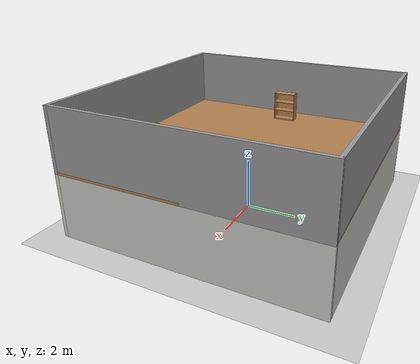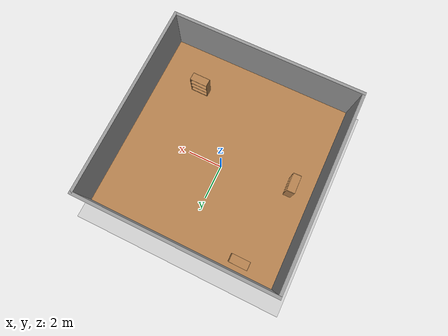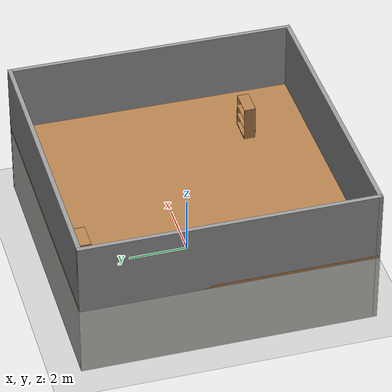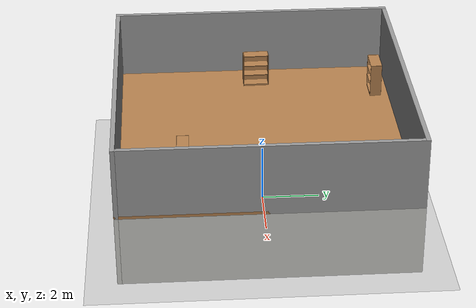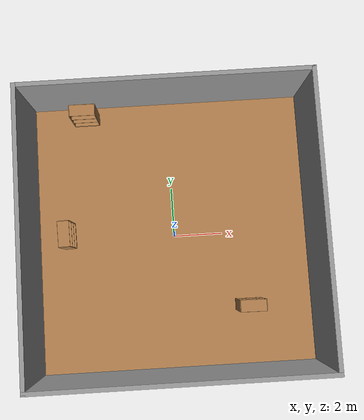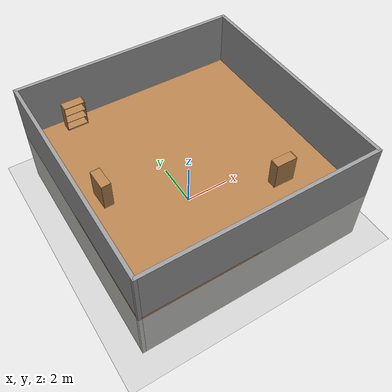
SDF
<sdf version="1.7">
 <world name="default">
  <light name="sun" type="directional">
   <pose>0 0 10 0 -0 0</pose>
   <diffuse>0.8 0.8 0.8 1</diffuse>
   <specular>0.1 0.1 0.1 1</specular>
   <attenuation>
    <range>1000</range>
    <constant>0.9</constant>
    <linear>0.01</linear>
    <quadratic>0.001</quadratic>
   </attenuation>
   <direction>-0.5 0.5 -1</direction>
   <spot><inner_angle>0</inner_angle><outer_angle>0</outer_angle><falloff>0</falloff></spot>
  </light>
  <model name="ground_plane">
   <static>1</static>
   <link name="link">
    <collision name="collision">
     <geometry><plane><normal>0 0 1</normal><size>100 100</size></plane></geometry>
     <surface><friction><ode><mu>100</mu><mu2>50</mu2></ode></friction></surface>
    </collision>
    <visual name="visual">
     <cast_shadows>0</cast_shadows>
     <geometry><plane><normal>0 0 1</normal><size>100 100</size></plane></geometry>
     <material>
      <script><uri>file://media/materials/scripts/gazebo.material</uri><name>Gazebo/Grey</name></script>
     </material>
    </visual>
   </link>
  </model>
  <gravity>0 0 -9.8</gravity>
  <magnetic_field>6e-06 2.3e-05 -4.2e-05</magnetic_field>
  <atmosphere type="adiabatic"/>
  <physics name="default_physics" default="0" type="ode">
   <max_step_size>0.001</max_step_size>
   <real_time_factor>1</real_time_factor>
   <real_time_update_rate>1000</real_time_update_rate>
  </physics>
  <scene><ambient>0.4 0.4 0.4 1</ambient><background>0.7 0.7 0.7 1</background><shadows>1</shadows></scene>
  <spherical_coordinates>
   <surface_model>EARTH_WGS84</surface_model>
   <latitude_deg>0</latitude_deg>
   <longitude_deg>0</longitude_deg>
   <elevation>0</elevation>
   <heading_deg>0</heading_deg>
  </spherical_coordinates>
  <model name="PracticeWorld">
   <pose>-0.067083 -0.068655 0 0 -0 0</pose>
   <link name="Floor_0">
    <collision name="Floor_0_Collision">
     <geometry><box><size>10 10 0.1</size></box></geometry>
     <pose>0 0 0.05 0 -0 0</pose>
    </collision>
    <visual name="Floor_0_Visual">
     <pose>0 0 0.05 0 -0 0</pose>
     <geometry><box><size>10 10 0.1</size></box></geometry>
     <material>
      <script><uri>file://media/materials/scripts/gazebo.material</uri><name>Gazebo/Wood</name></script>
      <ambient>1 1 1 1</ambient>
     </material>
    </visual>
    <pose>0 0 2.5 0 -0 0</pose>
   </link>
   <link name="Wall_10">
    <collision name="Wall_10_Collision">
     <geometry><box><size>10 0.15 2.5</size></box></geometry>
     <pose>0 0 1.25 0 -0 0</pose>
    </collision>
    <visual name="Wall_10_Visual">
     <pose>0 0 1.25 0 -0 0</pose>
     <geometry><box><size>10 0.15 2.5</size></box></geometry>
     <material>
      <script><uri>file://media/materials/scripts/gazebo.material</uri><name>Gazebo/Grey</name></script>
      <ambient>1 1 1 1</ambient>
     </material>
    </visual>
    <pose>-4.925 0 2.5 0 -0 1.5708</pose>
   </link>
   <link name="Wall_11">
    <collision name="Wall_11_Collision">
     <geometry><box><size>10 0.15 2.5</size></box></geometry>
     <pose>0 0 1.25 0 -0 0</pose>
    </collision>
    <visual name="Wall_11_Visual">
     <pose>0 0 1.25 0 -0 0</pose>
     <geometry><box><size>10 0.15 2.5</size></box></geometry>
     <material>
      <script><uri>file://media/materials/scripts/gazebo.material</uri><name>Gazebo/Grey</name></script>
      <ambient>1 1 1 1</ambient>
     </material>
    </visual>
    <pose>0 4.925 2.5 0 -0 0</pose>
   </link>
   <link name="Wall_12">
    <collision name="Wall_12_Collision">
     <geometry><box><size>10 0.15 2.5</size></box></geometry>
     <pose>0 0 1.25 0 -0 0</pose>
    </collision>
    <visual name="Wall_12_Visual">
     <pose>0 0 1.25 0 -0 0</pose>
     <geometry><box><size>10 0.15 2.5</size></box></geometry>
     <material>
      <script><uri>file://media/materials/scripts/gazebo.material</uri><name>Gazebo/Grey</name></script>
      <ambient>1 1 1 1</ambient>
     </material>
    </visual>
    <pose>4.925 0 2.5 0 0 -1.5708</pose>
   </link>
   <link name="Wall_13">
    <collision name="Wall_13_Collision">
     <geometry><box><size>10 0.15 2.5</size></box></geometry>
     <pose>0 0 1.25 0 -0 0</pose>
    </collision>
    <visual name="Wall_13_Visual">
     <pose>0 0 1.25 0 -0 0</pose>
     <geometry><box><size>10 0.15 2.5</size></box></geometry>
     <material>
      <script><uri>file://media/materials/scripts/gazebo.material</uri><name>Gazebo/Grey</name></script>
      <ambient>1 1 1 1</ambient>
     </material>
    </visual>
    <pose>0 -4.925 2.5 0 -0 3.14159</pose>
   </link>
   <link name="Wall_5">
    <collision name="Wall_5_Collision">
     <geometry><box><size>10 0.15 2.5</size></box></geometry>
     <pose>0 0 1.25 0 -0 0</pose>
    </collision>
    <visual name="Wall_5_Visual">
     <pose>0 0 1.25 0 -0 0</pose>
     <geometry><box><size>10 0.15 2.5</size></box></geometry>
     <material>
      <script><uri>file://media/materials/scripts/gazebo.material</uri><name>Gazebo/CeilingTiled</name></script>
      <ambient>0.996078 0.47451 0.0196078 1</ambient>
     </material>
    </visual>
    <pose>-4.925 0 0 0 -0 1.5708</pose>
   </link>
   <link name="Wall_6">
    <collision name="Wall_6_Collision">
     <geometry><box><size>10 0.15 2.5</size></box></geometry>
     <pose>0 0 1.25 0 -0 0</pose>
    </collision>
    <visual name="Wall_6_Visual">
     <pose>0 0 1.25 0 -0 0</pose>
     <geometry><box><size>10 0.15 2.5</size></box></geometry>
     <material>
      <script><uri>file://media/materials/scripts/gazebo.material</uri><name>Gazebo/CeilingTiled</name></script>
      <ambient>0.996078 0.47451 0.0196078 1</ambient>
     </material>
    </visual>
    <pose>0 4.925 0 0 -0 0</pose>
   </link>
   <link name="Wall_7">
    <collision name="Wall_7_Collision">
     <geometry><box><size>10 0.15 2.5</size></box></geometry>
     <pose>0 0 1.25 0 -0 0</pose>
    </collision>
    <visual name="Wall_7_Visual">
     <pose>0 0 1.25 0 -0 0</pose>
     <geometry><box><size>10 0.15 2.5</size></box></geometry>
     <material>
      <script><uri>file://media/materials/scripts/gazebo.material</uri><name>Gazebo/CeilingTiled</name></script>
      <ambient>0.996078 0.47451 0.0196078 1</ambient>
     </material>
    </visual>
    <pose>4.925 0 0 0 0 -1.5708</pose>
   </link>
   <link name="Wall_8">
    <collision name="Wall_8_Collision">
     <geometry><box><size>10 0.15 2.5</size></box></geometry>
     <pose>0 0 1.25 0 -0 0</pose>
    </collision>
    <visual name="Wall_8_Visual">
     <pose>0 0 1.25 0 -0 0</pose>
     <geometry><box><size>10 0.15 2.5</size></box></geometry>
     <material>
      <script><uri>file://media/materials/scripts/gazebo.material</uri><name>Gazebo/CeilingTiled</name></script>
      <ambient>0.996078 0.47451 0.0196078 1</ambient>
     </material>
    </visual>
    <pose>0 -4.925 0 0 -0 3.14159</pose>
   </link>
   <static>1</static>
  </model>
  <model name="bookshelf">
   <static>1</static>
   <link name="link">
    <inertial><mass>1</mass></inertial>
    <collision name="back">
     <pose>0 0.005 0.6 0 -0 0</pose>
     <geometry><box><size>0.9 0.01 1.2</size></box></geometry>
    </collision>
    <visual name="visual1">
     <pose>0 0.005 0.6 0 -0 0</pose>
     <geometry><box><size>0.9 0.01 1.2</size></box></geometry>
     <material>
      <script><uri>file://media/materials/scripts/gazebo.material</uri><name>Gazebo/Wood</name></script>
     </material>
    </visual>
    <collision name="left_side">
     <pose>0.45 -0.195 0.6 0 -0 0</pose>
     <geometry><box><size>0.02 0.4 1.2</size></box></geometry>
    </collision>
    <visual name="visual2">
     <pose>0.45 -0.195 0.6 0 -0 0</pose>
     <geometry><box><size>0.02 0.4 1.2</size></box></geometry>
     <material>
      <script><uri>file://media/materials/scripts/gazebo.material</uri><name>Gazebo/Wood</name></script>
     </material>
    </visual>
    <collision name="right_side">
     <pose>-0.45 -0.195 0.6 0 -0 0</pose>
     <geometry><box><size>0.02 0.4 1.2</size></box></geometry>
    </collision>
    <visual name="visual3">
     <pose>-0.45 -0.195 0.6 0 -0 0</pose>
     <geometry><box><size>0.02 0.4 1.2</size></box></geometry>
     <material>
      <script><uri>file://media/materials/scripts/gazebo.material</uri><name>Gazebo/Wood</name></script>
     </material>
    </visual>
    <collision name="bottom">
     <pose>0 -0.195 0.03 0 -0 0</pose>
     <geometry><box><size>0.88 0.4 0.06</size></box></geometry>
    </collision>
    <visual name="visual4">
     <pose>0 -0.195 0.03 0 -0 0</pose>
     <geometry><box><size>0.88 0.4 0.06</size></box></geometry>
     <material>
      <script><uri>file://media/materials/scripts/gazebo.material</uri><name>Gazebo/Wood</name></script>
     </material>
    </visual>
    <collision name="top">
     <pose>0 -0.195 1.19 0 -0 0</pose>
     <geometry><box><size>0.88 0.4 0.02</size></box></geometry>
    </collision>
    <visual name="visual5">
     <pose>0 -0.195 1.19 0 -0 0</pose>
     <geometry><box><size>0.88 0.4 0.02</size></box></geometry>
     <material>
      <script><uri>file://media/materials/scripts/gazebo.material</uri><name>Gazebo/Wood</name></script>
     </material>
    </visual>
    <collision name="low_shelf">
     <pose>0 -0.195 0.43 0 -0 0</pose>
     <geometry><box><size>0.88 0.4 0.02</size></box></geometry>
    </collision>
    <visual name="visual6">
     <pose>0 -0.195 0.43 0 -0 0</pose>
     <geometry><box><size>0.88 0.4 0.02</size></box></geometry>
     <material>
      <script><uri>file://media/materials/scripts/gazebo.material</uri><name>Gazebo/Wood</name></script>
     </material>
    </visual>
    <collision name="high_shelf">
     <pose>0 -0.195 0.8 0 -0 0</pose>
     <geometry><box><size>0.88 0.4 0.02</size></box></geometry>
    </collision>
    <visual name="visual7">
     <pose>0 -0.195 0.8 0 -0 0</pose>
     <geometry><box><size>0.88 0.4 0.02</size></box></geometry>
     <material>
      <script><uri>file://media/materials/scripts/gazebo.material</uri><name>Gazebo/Wood</name></script>
     </material>
    </visual>
   </link>
   <pose>2.5 -3 2.62929 0 -0 3.13</pose>
  </model>
  <model name="bookshelf_0">
   <static>1</static>
   <link name="link">
    <inertial><mass>1</mass></inertial>
    <collision name="back">
     <pose>0 0.005 0.6 0 -0 0</pose>
     <geometry><box><size>0.9 0.01 1.2</size></box></geometry>
    </collision>
    <visual name="visual1">
     <pose>0 0.005 0.6 0 -0 0</pose>
     <geometry><box><size>0.9 0.01 1.2</size></box></geometry>
     <material>
      <script><uri>file://media/materials/scripts/gazebo.material</uri><name>Gazebo/Wood</name></script>
     </material>
    </visual>
    <collision name="left_side">
     <pose>0.45 -0.195 0.6 0 -0 0</pose>
     <geometry><box><size>0.02 0.4 1.2</size></box></geometry>
    </collision>
    <visual name="visual2">
     <pose>0.45 -0.195 0.6 0 -0 0</pose>
     <geometry><box><size>0.02 0.4 1.2</size></box></geometry>
     <material>
      <script><uri>file://media/materials/scripts/gazebo.material</uri><name>Gazebo/Wood</name></script>
     </material>
    </visual>
    <collision name="right_side">
     <pose>-0.45 -0.195 0.6 0 -0 0</pose>
     <geometry><box><size>0.02 0.4 1.2</size></box></geometry>
    </collision>
    <visual name="visual3">
     <pose>-0.45 -0.195 0.6 0 -0 0</pose>
     <geometry><box><size>0.02 0.4 1.2</size></box></geometry>
     <material>
      <script><uri>file://media/materials/scripts/gazebo.material</uri><name>Gazebo/Wood</name></script>
     </material>
    </visual>
    <collision name="bottom">
     <pose>0 -0.195 0.03 0 -0 0</pose>
     <geometry><box><size>0.88 0.4 0.06</size></box></geometry>
    </collision>
    <visual name="visual4">
     <pose>0 -0.195 0.03 0 -0 0</pose>
     <geometry><box><size>0.88 0.4 0.06</size></box></geometry>
     <material>
      <script><uri>file://media/materials/scripts/gazebo.material</uri><name>Gazebo/Wood</name></script>
     </material>
    </visual>
    <collision name="top">
     <pose>0 -0.195 1.19 0 -0 0</pose>
     <geometry><box><size>0.88 0.4 0.02</size></box></geometry>
    </collision>
    <visual name="visual5">
     <pose>0 -0.195 1.19 0 -0 0</pose>
     <geometry><box><size>0.88 0.4 0.02</size></box></geometry>
     <material>
      <script><uri>file://media/materials/scripts/gazebo.material</uri><name>Gazebo/Wood</name></script>
     </material>
    </visual>
    <collision name="low_shelf">
     <pose>0 -0.195 0.43 0 -0 0</pose>
     <geometry><box><size>0.88 0.4 0.02</size></box></geometry>
    </collision>
    <visual name="visual6">
     <pose>0 -0.195 0.43 0 -0 0</pose>
     <geometry><box><size>0.88 0.4 0.02</size></box></geometry>
     <material>
      <script><uri>file://media/materials/scripts/gazebo.material</uri><name>Gazebo/Wood</name></script>
     </material>
    </visual>
    <collision name="high_shelf">
     <pose>0 -0.195 0.8 0 -0 0</pose>
     <geometry><box><size>0.88 0.4 0.02</size></box></geometry>
    </collision>
    <visual name="visual7">
     <pose>0 -0.195 0.8 0 -0 0</pose>
     <geometry><box><size>0.88 0.4 0.02</size></box></geometry>
     <material>
      <script><uri>file://media/materials/scripts/gazebo.material</uri><name>Gazebo/Wood</name></script>
     </material>
    </visual>
   </link>
   <pose>-4 0 2.62929 0 -0 1.59943</pose>
  </model>
  <model name="bookshelf_1">
   <static>1</static>
   <link name="link">
    <inertial><mass>1</mass></inertial>
    <collision name="back">
     <pose>0 0.005 0.6 0 -0 0</pose>
     <geometry><box><size>0.9 0.01 1.2</size></box></geometry>
    </collision>
    <visual name="visual1">
     <pose>0 0.005 0.6 0 -0 0</pose>
     <geometry><box><size>0.9 0.01 1.2</size></box></geometry>
     <material>
      <script><uri>file://media/materials/scripts/gazebo.material</uri><name>Gazebo/Wood</name></script>
     </material>
    </visual>
    <collision name="left_side">
     <pose>0.45 -0.195 0.6 0 -0 0</pose>
     <geometry><box><size>0.02 0.4 1.2</size></box></geometry>
    </collision>
    <visual name="visual2">
     <pose>0.45 -0.195 0.6 0 -0 0</pose>
     <geometry><box><size>0.02 0.4 1.2</size></box></geometry>
     <material>
      <script><uri>file://media/materials/scripts/gazebo.material</uri><name>Gazebo/Wood</name></script>
     </material>
    </visual>
    <collision name="right_side">
     <pose>-0.45 -0.195 0.6 0 -0 0</pose>
     <geometry><box><size>0.02 0.4 1.2</size></box></geometry>
    </collision>
    <visual name="visual3">
     <pose>-0.45 -0.195 0.6 0 -0 0</pose>
     <geometry><box><size>0.02 0.4 1.2</size></box></geometry>
     <material>
      <script><uri>file://media/materials/scripts/gazebo.material</uri><name>Gazebo/Wood</name></script>
     </material>
    </visual>
    <collision name="bottom">
     <pose>0 -0.195 0.03 0 -0 0</pose>
     <geometry><box><size>0.88 0.4 0.06</size></box></geometry>
    </collision>
    <visual name="visual4">
     <pose>0 -0.195 0.03 0 -0 0</pose>
     <geometry><box><size>0.88 0.4 0.06</size></box></geometry>
     <material>
      <script><uri>file://media/materials/scripts/gazebo.material</uri><name>Gazebo/Wood</name></script>
     </material>
    </visual>
    <collision name="top">
     <pose>0 -0.195 1.19 0 -0 0</pose>
     <geometry><box><size>0.88 0.4 0.02</size></box></geometry>
    </collision>
    <visual name="visual5">
     <pose>0 -0.195 1.19 0 -0 0</pose>
     <geometry><box><size>0.88 0.4 0.02</size></box></geometry>
     <material>
      <script><uri>file://media/materials/scripts/gazebo.material</uri><name>Gazebo/Wood</name></script>
     </material>
    </visual>
    <collision name="low_shelf">
     <pose>0 -0.195 0.43 0 -0 0</pose>
     <geometry><box><size>0.88 0.4 0.02</size></box></geometry>
    </collision>
    <visual name="visual6">
     <pose>0 -0.195 0.43 0 -0 0</pose>
     <geometry><box><size>0.88 0.4 0.02</size></box></geometry>
     <material>
      <script><uri>file://media/materials/scripts/gazebo.material</uri><name>Gazebo/Wood</name></script>
     </material>
    </visual>
    <collision name="high_shelf">
     <pose>0 -0.195 0.8 0 -0 0</pose>
     <geometry><box><size>0.88 0.4 0.02</size></box></geometry>
    </collision>
    <visual name="visual7">
     <pose>0 -0.195 0.8 0 -0 0</pose>
     <geometry><box><size>0.88 0.4 0.02</size></box></geometry>
     <material>
      <script><uri>file://media/materials/scripts/gazebo.material</uri><name>Gazebo/Wood</name></script>
     </material>
    </visual>
   </link>
   <pose>-3 4.5 2.62079 0 -0 0</pose>
  </model>
 </world>
</sdf>
